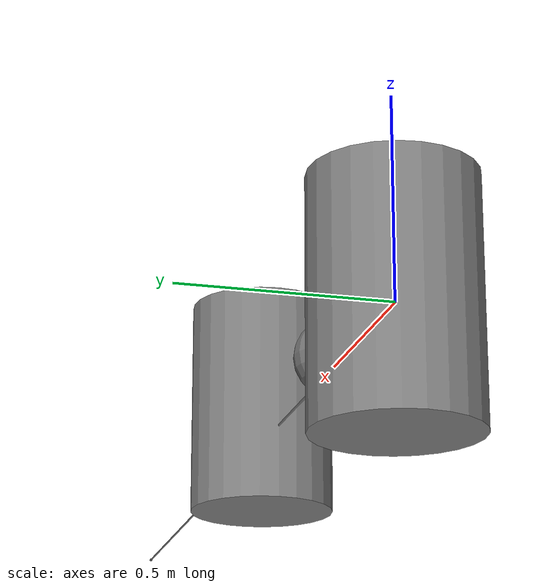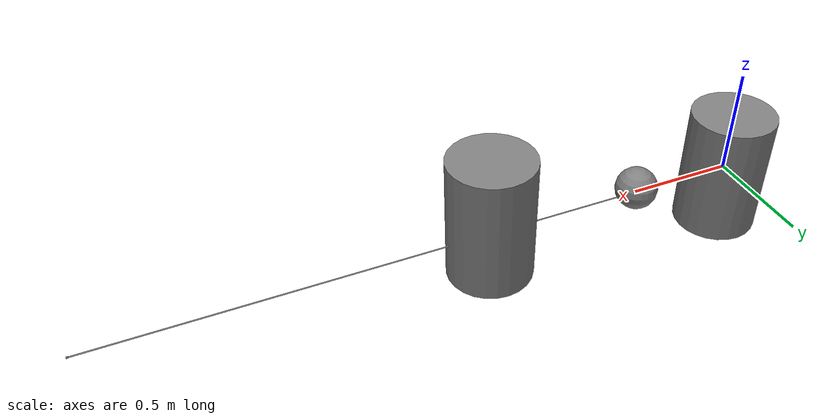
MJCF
<mujoco>
  <worldbody>
    <site name="siteworld0"/>
    <site name="siteworld1" pos="3 0 0"/>
    <geom name="sphereworld0" type="sphere" size=".1" pos=".5 0 .025"/>
    <geom name="sphereworld1" type="cylinder" size=".2 .3" pos="1.25 0 .1"/>
    <body>
      <joint type="slide" axis="1 0 0"/>
      <geom type="sphere" size="0.1"/>
      <site name="site0"/>
    </body>
    <body>
      <joint type="slide" axis="1 0 0"/>
      <geom type="cylinder" size=".2 .3"/>
      <site name="site1"/>
    </body>
  </worldbody>
  <tendon>
    <spatial name="spatial0">
      <pulley divisor="2"/>
      <site site="siteworld0"/>
      <geom geom="sphereworld0"/>
      <site site="site0"/>
    </spatial>
    <spatial name="spatial1">
      <site site="siteworld0"/>
      <site site="site0"/>
      <geom geom="sphereworld1"/>
      <site site="site1"/>
    </spatial>
    <spatial>
      <pulley divisor="3"/>
      <site site="siteworld0"/>
      <geom geom="sphereworld1"/>
      <site site="site1"/>
      <site site="siteworld1"/>
    </spatial>
  </tendon>
  <keyframe>
    <key qpos="1 2"/>
  </keyframe>
</mujoco>
